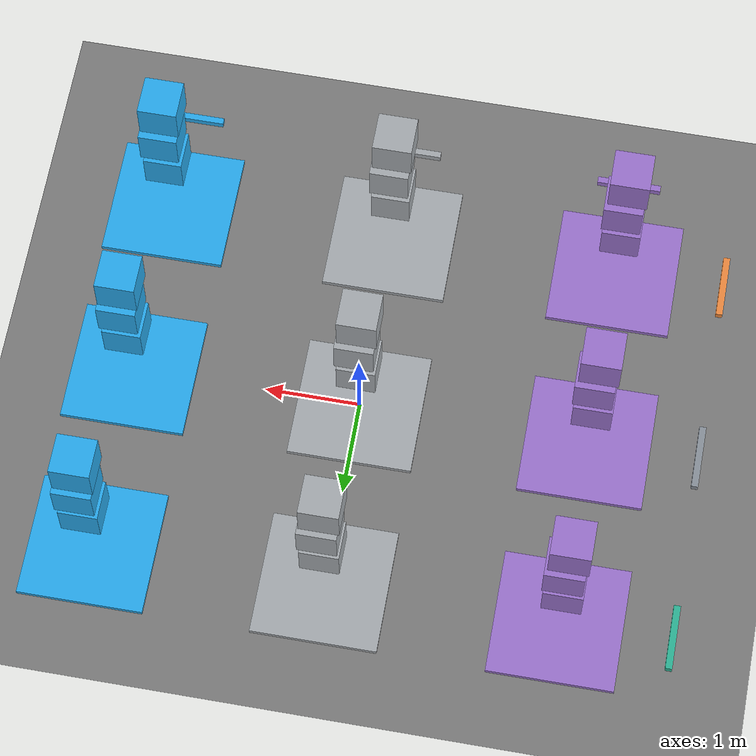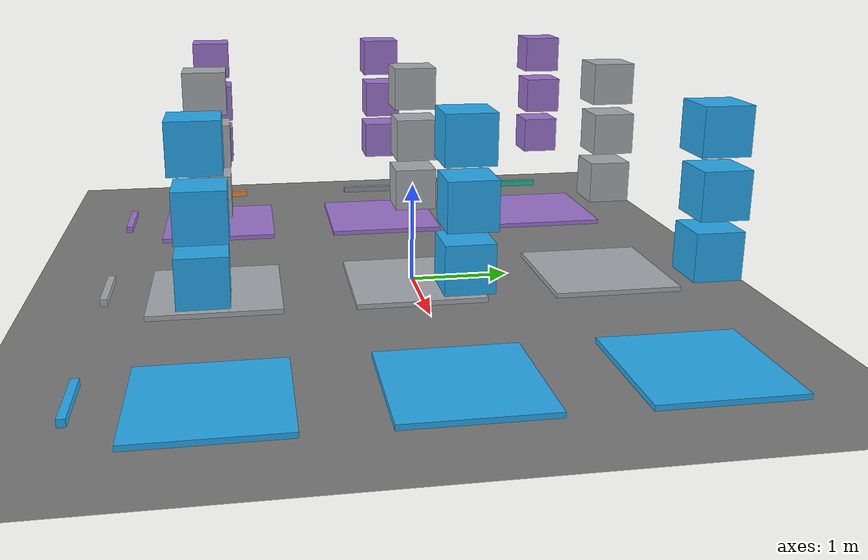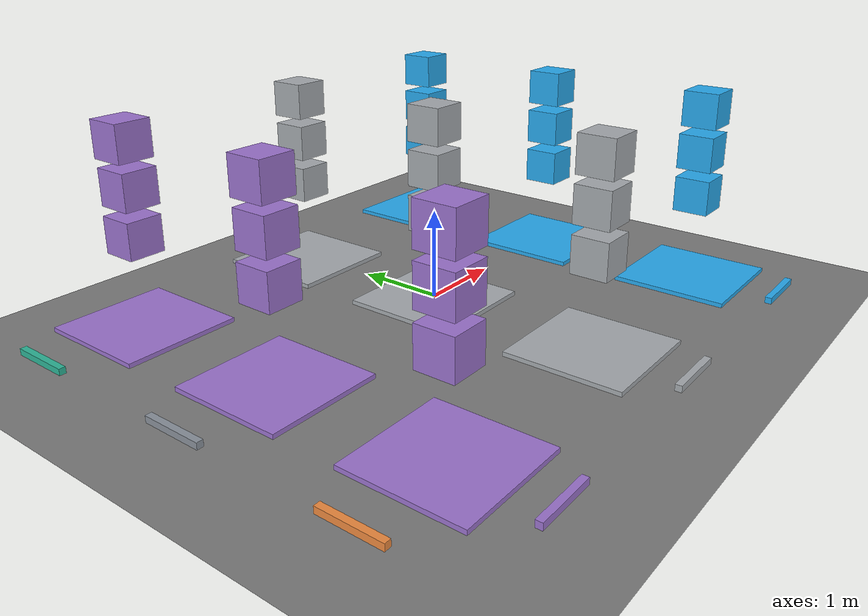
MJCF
<mujoco model="direct_solref_cube_stack_demo">
  <compiler angle="degree" coordinate="local"/>

  <option
    timestep="0.001"
    gravity="0 0 -9.81"
    integrator="implicitfast"
    solver="Newton"
    iterations="80"
    tolerance="1e-10">
    <flag contact="enable"/>
  </option>

  <default>
    <geom
      friction="1.2 0.005 0.0001"
      solimp="0.9 0.95 0.001 0.5 2"/>

    <default class="k500_b20">
      <geom solref="-500 -20"/>
    </default>
    <default class="k2500_b20">
      <geom solref="-2500 -20"/>
    </default>
    <default class="k10000_b20">
      <geom solref="-10000 -20"/>
    </default>

    <default class="k500_b100">
      <geom solref="-500 -100"/>
    </default>
    <default class="k2500_b100">
      <geom solref="-2500 -100"/>
    </default>
    <default class="k10000_b100">
      <geom solref="-10000 -100"/>
    </default>

    <default class="k500_b300">
      <geom solref="-500 -300"/>
    </default>
    <default class="k2500_b300">
      <geom solref="-2500 -300"/>
    </default>
    <default class="k10000_b300">
      <geom solref="-10000 -300"/>
    </default>
  </default>

  <visual>
    <global azimuth="135" elevation="-25"/>
    <quality shadowsize="2048"/>
  </visual>

  <asset>
    <texture
      name="grid_texture"
      type="2d"
      builtin="checker"
      rgb1="0.16 0.16 0.16"
      rgb2="0.82 0.82 0.82"
      width="512"
      height="512"/>

    <material
      name="grid_material"
      texture="grid_texture"
      texrepeat="12 12"
      reflectance="0.12"/>

    <!-- Color encodes stiffness column. -->
    <material name="k500_mat" rgba="0.62 0.46 0.82 1"/>
    <material name="k2500_mat" rgba="0.66 0.68 0.70 1"/>
    <material name="k10000_mat" rgba="0.16 0.68 0.95 1"/>
  </asset>

  <worldbody>
    <light name="key_light" pos="0 -6 7" dir="0 1 -1" diffuse="0.9 0.9 0.9"/>
    <light name="fill_light" pos="-5 3 4" dir="1 -1 -1" diffuse="0.35 0.35 0.35"/>

    <camera name="grid_view" pos="0 -8.8 5.0" xyaxes="1 0 0 0 0.50 0.866"/>
    <camera name="low_side" pos="0 -9.5 1.9" xyaxes="1 0 0 0 0.18 0.984"/>

    <geom
      name="visual_grid"
      type="plane"
      pos="0 0 -0.04"
      size="4.5 4.0 0.1"
      material="grid_material"
      contype="0"
      conaffinity="0"/>

    <!-- Viewer labels: enable site labels to see the grid axes. -->
    <site name="k_500" type="box" pos="-2.4 -3.05 0.04" size="0.34 0.035 0.035" rgba="0.62 0.46 0.82 1"/>
    <site name="k_2500" type="box" pos="0 -3.05 0.04" size="0.34 0.035 0.035" rgba="0.66 0.68 0.70 1"/>
    <site name="k_10000" type="box" pos="2.4 -3.05 0.04" size="0.34 0.035 0.035" rgba="0.16 0.68 0.95 1"/>

    <site name="b_20" type="box" pos="-3.55 -2.0 0.04" size="0.035 0.34 0.035" rgba="0.95 0.55 0.25 1"/>
    <site name="b_100" type="box" pos="-3.55 0 0.04" size="0.035 0.34 0.035" rgba="0.55 0.58 0.62 1"/>
    <site name="b_300" type="box" pos="-3.55 2.0 0.04" size="0.035 0.34 0.035" rgba="0.18 0.72 0.60 1"/>

    <!-- Row 1: low damping, b = 20. -->
    <geom name="pad_k500_b20" class="k500_b20" type="box" pos="-2.4 -2.0 -0.20" size="0.65 0.65 0.20" material="k500_mat"/>
    <body name="k500_b20_bottom" pos="-2.400 -2.000 1.000">
      <freejoint/>
      <geom name="k500_b20_bottom_geom" class="k500_b20" type="box" size="0.20 0.20 0.20" mass="0.8" material="k500_mat"/>
    </body>
    <body name="k500_b20_middle" pos="-2.385 -1.990 1.500">
      <freejoint/>
      <geom name="k500_b20_middle_geom" class="k500_b20" type="box" size="0.20 0.20 0.20" mass="0.8" material="k500_mat"/>
    </body>
    <body name="k500_b20_top" pos="-2.412 -2.010 2.000">
      <freejoint/>
      <geom name="k500_b20_top_geom" class="k500_b20" type="box" size="0.20 0.20 0.20" mass="0.8" material="k500_mat"/>
    </body>

    <geom name="pad_k2500_b20" class="k2500_b20" type="box" pos="0 -2.0 -0.20" size="0.65 0.65 0.20" material="k2500_mat"/>
    <body name="k2500_b20_bottom" pos="0.000 -2.000 1.000">
      <freejoint/>
      <geom name="k2500_b20_bottom_geom" class="k2500_b20" type="box" size="0.20 0.20 0.20" mass="0.8" material="k2500_mat"/>
    </body>
    <body name="k2500_b20_middle" pos="0.015 -1.990 1.500">
      <freejoint/>
      <geom name="k2500_b20_middle_geom" class="k2500_b20" type="box" size="0.20 0.20 0.20" mass="0.8" material="k2500_mat"/>
    </body>
    <body name="k2500_b20_top" pos="-0.012 -2.010 2.000">
      <freejoint/>
      <geom name="k2500_b20_top_geom" class="k2500_b20" type="box" size="0.20 0.20 0.20" mass="0.8" material="k2500_mat"/>
    </body>

    <geom name="pad_k10000_b20" class="k10000_b20" type="box" pos="2.4 -2.0 -0.20" size="0.65 0.65 0.20" material="k10000_mat"/>
    <body name="k10000_b20_bottom" pos="2.400 -2.000 1.000">
      <freejoint/>
      <geom name="k10000_b20_bottom_geom" class="k10000_b20" type="box" size="0.20 0.20 0.20" mass="0.8" material="k10000_mat"/>
    </body>
    <body name="k10000_b20_middle" pos="2.415 -1.990 1.500">
      <freejoint/>
      <geom name="k10000_b20_middle_geom" class="k10000_b20" type="box" size="0.20 0.20 0.20" mass="0.8" material="k10000_mat"/>
    </body>
    <body name="k10000_b20_top" pos="2.388 -2.010 2.000">
      <freejoint/>
      <geom name="k10000_b20_top_geom" class="k10000_b20" type="box" size="0.20 0.20 0.20" mass="0.8" material="k10000_mat"/>
    </body>

    <!-- Row 2: medium damping, b = 100. -->
    <geom name="pad_k500_b100" class="k500_b100" type="box" pos="-2.4 0 -0.20" size="0.65 0.65 0.20" material="k500_mat"/>
    <body name="k500_b100_bottom" pos="-2.400 0.000 1.000">
      <freejoint/>
      <geom name="k500_b100_bottom_geom" class="k500_b100" type="box" size="0.20 0.20 0.20" mass="0.8" material="k500_mat"/>
    </body>
    <body name="k500_b100_middle" pos="-2.385 0.010 1.500">
      <freejoint/>
      <geom name="k500_b100_middle_geom" class="k500_b100" type="box" size="0.20 0.20 0.20" mass="0.8" material="k500_mat"/>
    </body>
    <body name="k500_b100_top" pos="-2.412 -0.010 2.000">
      <freejoint/>
      <geom name="k500_b100_top_geom" class="k500_b100" type="box" size="0.20 0.20 0.20" mass="0.8" material="k500_mat"/>
    </body>

    <geom name="pad_k2500_b100" class="k2500_b100" type="box" pos="0 0 -0.20" size="0.65 0.65 0.20" material="k2500_mat"/>
    <body name="k2500_b100_bottom" pos="0.000 0.000 1.000">
      <freejoint/>
      <geom name="k2500_b100_bottom_geom" class="k2500_b100" type="box" size="0.20 0.20 0.20" mass="0.8" material="k2500_mat"/>
    </body>
    <body name="k2500_b100_middle" pos="0.015 0.010 1.500">
      <freejoint/>
      <geom name="k2500_b100_middle_geom" class="k2500_b100" type="box" size="0.20 0.20 0.20" mass="0.8" material="k2500_mat"/>
    </body>
    <body name="k2500_b100_top" pos="-0.012 -0.010 2.000">
      <freejoint/>
      <geom name="k2500_b100_top_geom" class="k2500_b100" type="box" size="0.20 0.20 0.20" mass="0.8" material="k2500_mat"/>
    </body>

    <geom name="pad_k10000_b100" class="k10000_b100" type="box" pos="2.4 0 -0.20" size="0.65 0.65 0.20" material="k10000_mat"/>
    <body name="k10000_b100_bottom" pos="2.400 0.000 1.000">
      <freejoint/>
      <geom name="k10000_b100_bottom_geom" class="k10000_b100" type="box" size="0.20 0.20 0.20" mass="0.8" material="k10000_mat"/>
    </body>
    <body name="k10000_b100_middle" pos="2.415 0.010 1.500">
      <freejoint/>
      <geom name="k10000_b100_middle_geom" class="k10000_b100" type="box" size="0.20 0.20 0.20" mass="0.8" material="k10000_mat"/>
    </body>
    <body name="k10000_b100_top" pos="2.388 -0.010 2.000">
      <freejoint/>
      <geom name="k10000_b100_top_geom" class="k10000_b100" type="box" size="0.20 0.20 0.20" mass="0.8" material="k10000_mat"/>
    </body>

    <!-- Row 3: high damping, b = 300. -->
    <geom name="pad_k500_b300" class="k500_b300" type="box" pos="-2.4 2.0 -0.20" size="0.65 0.65 0.20" material="k500_mat"/>
    <body name="k500_b300_bottom" pos="-2.400 2.000 1.000">
      <freejoint/>
      <geom name="k500_b300_bottom_geom" class="k500_b300" type="box" size="0.20 0.20 0.20" mass="0.8" material="k500_mat"/>
    </body>
    <body name="k500_b300_middle" pos="-2.385 2.010 1.500">
      <freejoint/>
      <geom name="k500_b300_middle_geom" class="k500_b300" type="box" size="0.20 0.20 0.20" mass="0.8" material="k500_mat"/>
    </body>
    <body name="k500_b300_top" pos="-2.412 1.990 2.000">
      <freejoint/>
      <geom name="k500_b300_top_geom" class="k500_b300" type="box" size="0.20 0.20 0.20" mass="0.8" material="k500_mat"/>
    </body>

    <geom name="pad_k2500_b300" class="k2500_b300" type="box" pos="0 2.0 -0.20" size="0.65 0.65 0.20" material="k2500_mat"/>
    <body name="k2500_b300_bottom" pos="0.000 2.000 1.000">
      <freejoint/>
      <geom name="k2500_b300_bottom_geom" class="k2500_b300" type="box" size="0.20 0.20 0.20" mass="0.8" material="k2500_mat"/>
    </body>
    <body name="k2500_b300_middle" pos="0.015 2.010 1.500">
      <freejoint/>
      <geom name="k2500_b300_middle_geom" class="k2500_b300" type="box" size="0.20 0.20 0.20" mass="0.8" material="k2500_mat"/>
    </body>
    <body name="k2500_b300_top" pos="-0.012 1.990 2.000">
      <freejoint/>
      <geom name="k2500_b300_top_geom" class="k2500_b300" type="box" size="0.20 0.20 0.20" mass="0.8" material="k2500_mat"/>
    </body>

    <geom name="pad_k10000_b300" class="k10000_b300" type="box" pos="2.4 2.0 -0.20" size="0.65 0.65 0.20" material="k10000_mat"/>
    <body name="k10000_b300_bottom" pos="2.400 2.000 1.000">
      <freejoint/>
      <geom name="k10000_b300_bottom_geom" class="k10000_b300" type="box" size="0.20 0.20 0.20" mass="0.8" material="k10000_mat"/>
    </body>
    <body name="k10000_b300_middle" pos="2.415 2.010 1.500">
      <freejoint/>
      <geom name="k10000_b300_middle_geom" class="k10000_b300" type="box" size="0.20 0.20 0.20" mass="0.8" material="k10000_mat"/>
    </body>
    <body name="k10000_b300_top" pos="2.388 1.990 2.000">
      <freejoint/>
      <geom name="k10000_b300_top_geom" class="k10000_b300" type="box" size="0.20 0.20 0.20" mass="0.8" material="k10000_mat"/>
    </body>
  </worldbody>

  <keyframe>
    <key name="pre_drop"/>
  </keyframe>
</mujoco>
